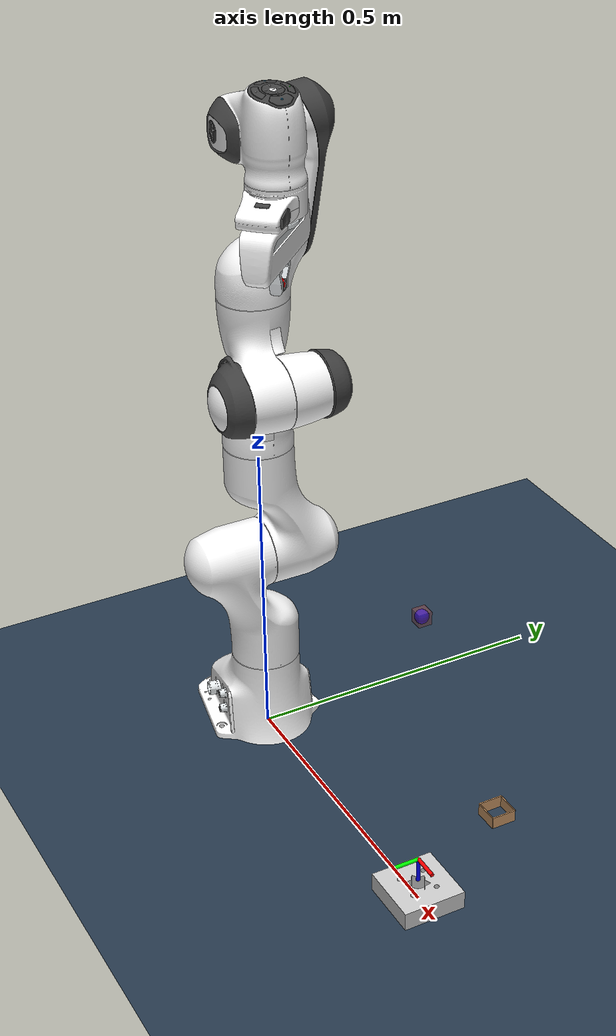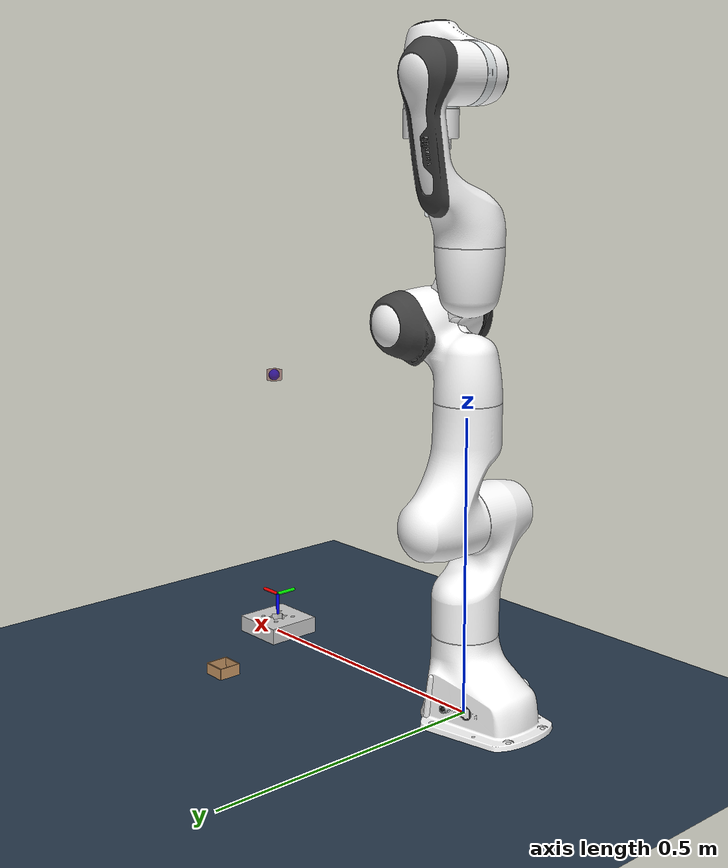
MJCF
<mujoco model="panda scene">

  <include file="panda.xml"/>
  <include file="peg_in_hole.xml"/>

  <statistic center="0.3 0 0.35" extent="0.8" meansize="0.05"/>

  <visual>
    <headlight diffuse="0.6 0.6 0.6" ambient="0.1 0.1 0.1" specular="0 0 0"/>
    <global azimuth="120" elevation="-20"/>
  </visual>

  <asset>
    <texture name="grid" type="2d" builtin="checker" rgb1=".2 .3 .4" rgb2=".1 0.15 0.2" width="512" height="512"
      mark="cross" markrgb=".8 .8 .8"/>
    <material name="grid" texture="grid" texrepeat="1 1" texuniform="true"/>
  </asset>

  <worldbody>
    <light pos="0 0 1.5" dir="0 0 -1" directional="true"/>
    <geom name="floor" size="1 1 0.01" type="plane" material="grid"/>
    <body name="target" pos="0.5 0 .5" quat="0 1 0 0" mocap="true">
      <geom type="box" size=".01 .01 .01" contype="0" conaffinity="0" rgba=".6 .3 .3 .5"/>
      <site type="sphere" size="0.01" rgba="0 0 1 1" group="1"/>
    </body>

  </worldbody>

  <keyframe>
    <key name="home" qpos="0 0 0 -1.57079 0 1.57079 0.7853 0.04 0.04 0.4 0.2 0.01 1 0 0 0" ctrl="0 0 0 -1.57079 0 1.57079 -0.7853 255"/>
  </keyframe>

</mujoco>

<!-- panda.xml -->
<mujoco model="panda">
  <compiler angle="radian" meshdir="assets" autolimits="true"/>

  <option integrator="implicitfast"/>

  <default>
    <default class="panda">
      <material specular="0.5" shininess="0.25"/>
      <joint armature="0.1" damping="1" axis="0 0 1" range="-2.8973 2.8973"/>
      <general dyntype="none" biastype="affine" ctrlrange="-2.8973 2.8973" forcerange="-87 87"/>
      <default class="finger">
        <joint axis="0 1 0" type="slide" range="0 0.04"/>
      </default>

      <default class="visual">
        <geom type="mesh" contype="0" conaffinity="0" group="2"/>
      </default>
      <default class="collision">
        <geom type="mesh" group="3"/>
        <default class="fingertip_pad_collision_1">
          <geom type="box" size="0.0085 0.004 0.0085" pos="0 0.0055 0.0445"/>
        </default>
        <default class="fingertip_pad_collision_2">
          <geom type="box" size="0.003 0.002 0.003" pos="0.0055 0.002 0.05"/>
        </default>
        <default class="fingertip_pad_collision_3">
          <geom type="box" size="0.003 0.002 0.003" pos="-0.0055 0.002 0.05"/>
        </default>
        <default class="fingertip_pad_collision_4">
          <geom type="box" size="0.003 0.002 0.0035" pos="0.0055 0.002 0.0395"/>
        </default>
        <default class="fingertip_pad_collision_5">
          <geom type="box" size="0.003 0.002 0.0035" pos="-0.0055 0.002 0.0395"/>
        </default>
      </default>
    </default>
  </default>

  <asset>
    <material class="panda" name="white" rgba="1 1 1 1"/>
    <material class="panda" name="off_white" rgba="0.901961 0.921569 0.929412 1"/>
    <material class="panda" name="black" rgba="0.25 0.25 0.25 1"/>
    <material class="panda" name="green" rgba="0 1 0 1"/>
    <material class="panda" name="light_blue" rgba="0.039216 0.541176 0.780392 1"/>

    <!-- Collision meshes -->
    <mesh name="link0_c" file="link0.stl"/>
    <mesh name="link1_c" file="link1.stl"/>
    <mesh name="link2_c" file="link2.stl"/>
    <mesh name="link3_c" file="link3.stl"/>
    <mesh name="link4_c" file="link4.stl"/>
    <mesh name="link5_c0" file="link5_collision_0.obj"/>
    <mesh name="link5_c1" file="link5_collision_1.obj"/>
    <mesh name="link5_c2" file="link5_collision_2.obj"/>
    <mesh name="link6_c" file="link6.stl"/>
    <mesh name="link7_c" file="link7.stl"/>
    <mesh name="hand_c" file="hand.stl"/>

    <!-- Visual meshes -->
    <mesh file="link0_0.obj"/>
    <mesh file="link0_1.obj"/>
    <mesh file="link0_2.obj"/>
    <mesh file="link0_3.obj"/>
    <mesh file="link0_4.obj"/>
    <mesh file="link0_5.obj"/>
    <mesh file="link0_7.obj"/>
    <mesh file="link0_8.obj"/>
    <mesh file="link0_9.obj"/>
    <mesh file="link0_10.obj"/>
    <mesh file="link0_11.obj"/>
    <mesh file="link1.obj"/>
    <mesh file="link2.obj"/>
    <mesh file="link3_0.obj"/>
    <mesh file="link3_1.obj"/>
    <mesh file="link3_2.obj"/>
    <mesh file="link3_3.obj"/>
    <mesh file="link4_0.obj"/>
    <mesh file="link4_1.obj"/>
    <mesh file="link4_2.obj"/>
    <mesh file="link4_3.obj"/>
    <mesh file="link5_0.obj"/>
    <mesh file="link5_1.obj"/>
    <mesh file="link5_2.obj"/>
    <mesh file="link6_0.obj"/>
    <mesh file="link6_1.obj"/>
    <mesh file="link6_2.obj"/>
    <mesh file="link6_3.obj"/>
    <mesh file="link6_4.obj"/>
    <mesh file="link6_5.obj"/>
    <mesh file="link6_6.obj"/>
    <mesh file="link6_7.obj"/>
    <mesh file="link6_8.obj"/>
    <mesh file="link6_9.obj"/>
    <mesh file="link6_10.obj"/>
    <mesh file="link6_11.obj"/>
    <mesh file="link6_12.obj"/>
    <mesh file="link6_13.obj"/>
    <mesh file="link6_14.obj"/>
    <mesh file="link6_15.obj"/>
    <mesh file="link6_16.obj"/>
    <mesh file="link7_0.obj"/>
    <mesh file="link7_1.obj"/>
    <mesh file="link7_2.obj"/>
    <mesh file="link7_3.obj"/>
    <mesh file="link7_4.obj"/>
    <mesh file="link7_5.obj"/>
    <mesh file="link7_6.obj"/>
    <mesh file="link7_7.obj"/>
    <mesh file="hand_0.obj"/>
    <mesh file="hand_1.obj"/>
    <mesh file="hand_2.obj"/>
    <mesh file="hand_3.obj"/>
    <mesh file="hand_4.obj"/>
    <mesh file="finger_0.obj"/>
    <mesh file="finger_1.obj"/>
  </asset>

  <worldbody>
    <light name="top" pos="0 0 2" mode="trackcom"/>
    <body name="link0" childclass="panda" gravcomp="1">
      <inertial mass="0.629769" pos="-0.041018 -0.00014 0.049974"
        fullinertia="0.00315 0.00388 0.004285 8.2904e-7 0.00015 8.2299e-6"/>
      <geom mesh="link0_0" material="off_white" class="visual"/>
      <geom mesh="link0_1" material="black" class="visual"/>
      <geom mesh="link0_2" material="off_white" class="visual"/>
      <geom mesh="link0_3" material="black" class="visual"/>
      <geom mesh="link0_4" material="off_white" class="visual"/>
      <geom mesh="link0_5" material="black" class="visual"/>
      <geom mesh="link0_7" material="white" class="visual"/>
      <geom mesh="link0_8" material="white" class="visual"/>
      <geom mesh="link0_9" material="black" class="visual"/>
      <geom mesh="link0_10" material="off_white" class="visual"/>
      <geom mesh="link0_11" material="white" class="visual"/>
      <geom mesh="link0_c" class="collision"/>
      <body name="link1" pos="0 0 0.333" gravcomp="1">
        <inertial mass="4.970684" pos="0.003875 0.002081 -0.04762"
          fullinertia="0.70337 0.70661 0.0091170 -0.00013900 0.0067720 0.019169"/>
        <joint name="joint1"/>
        <geom material="white" mesh="link1" class="visual"/>
        <geom mesh="link1_c" class="collision"/>
        <body name="link2" quat="1 -1 0 0" gravcomp="1">
          <inertial mass="0.646926" pos="-0.003141 -0.02872 0.003495"
            fullinertia="0.0079620 2.8110e-2 2.5995e-2 -3.925e-3 1.0254e-2 7.04e-4"/>
          <joint name="joint2" range="-1.7628 1.7628"/>
          <geom material="white" mesh="link2" class="visual"/>
          <geom mesh="link2_c" class="collision"/>
          <body name="link3" pos="0 -0.316 0" quat="1 1 0 0" gravcomp="1">
            <joint name="joint3"/>
            <inertial mass="3.228604" pos="2.7518e-2 3.9252e-2 -6.6502e-2"
              fullinertia="3.7242e-2 3.6155e-2 1.083e-2 -4.761e-3 -1.1396e-2 -1.2805e-2"/>
            <geom mesh="link3_0" material="white" class="visual"/>
            <geom mesh="link3_1" material="white" class="visual"/>
            <geom mesh="link3_2" material="white" class="visual"/>
            <geom mesh="link3_3" material="black" class="visual"/>
            <geom mesh="link3_c" class="collision"/>
            <body name="link4" pos="0.0825 0 0" quat="1 1 0 0" gravcomp="1">
              <inertial mass="3.587895" pos="-5.317e-2 1.04419e-1 2.7454e-2"
                fullinertia="2.5853e-2 1.9552e-2 2.8323e-2 7.796e-3 -1.332e-3 8.641e-3"/>
              <joint name="joint4" range="-3.0718 -0.0698"/>
              <geom mesh="link4_0" material="white" class="visual"/>
              <geom mesh="link4_1" material="white" class="visual"/>
              <geom mesh="link4_2" material="black" class="visual"/>
              <geom mesh="link4_3" material="white" class="visual"/>
              <geom mesh="link4_c" class="collision"/>
              <body name="link5" pos="-0.0825 0.384 0" quat="1 -1 0 0" gravcomp="1">
                <inertial mass="1.225946" pos="-1.1953e-2 4.1065e-2 -3.8437e-2"
                  fullinertia="3.5549e-2 2.9474e-2 8.627e-3 -2.117e-3 -4.037e-3 2.29e-4"/>
                <joint name="joint5"/>
                <geom mesh="link5_0" material="black" class="visual"/>
                <geom mesh="link5_1" material="white" class="visual"/>
                <geom mesh="link5_2" material="white" class="visual"/>
                <geom mesh="link5_c0" class="collision"/>
                <geom mesh="link5_c1" class="collision"/>
                <geom mesh="link5_c2" class="collision"/>
                <body name="link6" quat="1 1 0 0" gravcomp="1">
                  <inertial mass="1.666555" pos="6.0149e-2 -1.4117e-2 -1.0517e-2"
                    fullinertia="1.964e-3 4.354e-3 5.433e-3 1.09e-4 -1.158e-3 3.41e-4"/>
                  <joint name="joint6" range="-0.0175 3.7525"/>
                  <geom mesh="link6_0" material="off_white" class="visual"/>
                  <geom mesh="link6_1" material="white" class="visual"/>
                  <geom mesh="link6_2" material="black" class="visual"/>
                  <geom mesh="link6_3" material="white" class="visual"/>
                  <geom mesh="link6_4" material="white" class="visual"/>
                  <geom mesh="link6_5" material="white" class="visual"/>
                  <geom mesh="link6_6" material="white" class="visual"/>
                  <geom mesh="link6_7" material="light_blue" class="visual"/>
                  <geom mesh="link6_8" material="light_blue" class="visual"/>
                  <geom mesh="link6_9" material="black" class="visual"/>
                  <geom mesh="link6_10" material="black" class="visual"/>
                  <geom mesh="link6_11" material="white" class="visual"/>
                  <geom mesh="link6_12" material="green" class="visual"/>
                  <geom mesh="link6_13" material="white" class="visual"/>
                  <geom mesh="link6_14" material="black" class="visual"/>
                  <geom mesh="link6_15" material="black" class="visual"/>
                  <geom mesh="link6_16" material="white" class="visual"/>
                  <geom mesh="link6_c" class="collision"/>
                  <body name="link7" pos="0.088 0 0" quat="1 1 0 0" gravcomp="1">
                    <inertial mass="7.35522e-01" pos="1.0517e-2 -4.252e-3 6.1597e-2"
                      fullinertia="1.2516e-2 1.0027e-2 4.815e-3 -4.28e-4 -1.196e-3 -7.41e-4"/>
                    <joint name="joint7"/>
                    <geom mesh="link7_0" material="white" class="visual"/>
                    <geom mesh="link7_1" material="black" class="visual"/>
                    <geom mesh="link7_2" material="black" class="visual"/>
                    <geom mesh="link7_3" material="black" class="visual"/>
                    <geom mesh="link7_4" material="black" class="visual"/>
                    <geom mesh="link7_5" material="black" class="visual"/>
                    <geom mesh="link7_6" material="black" class="visual"/>
                    <geom mesh="link7_7" material="white" class="visual"/>
                    <geom mesh="link7_c" class="collision"/>
                    <body name="hand" pos="0 0 0.107" quat="0.9238795 0 0 -0.3826834" gravcomp="1">
                      <site name="attachment_site" rgba="1 0 0 1" size="0.01" group="1" pos = "0 0 0.1" quat="1 0 0 0"/>

                      <inertial mass="0.73" pos="-0.01 0 0.03" diaginertia="0.001 0.0025 0.0017"/>
                      <geom mesh="hand_0" material="off_white" class="visual"/>
                      <geom mesh="hand_1" material="black" class="visual"/>
                      <geom mesh="hand_2" material="black" class="visual"/>
                      <geom mesh="hand_3" material="white" class="visual"/>
                      <geom mesh="hand_4" material="off_white" class="visual"/>
                      <geom mesh="hand_c" class="collision"/>
                      <body name="left_finger" pos="0 0 0.0584" gravcomp="1">
                        <inertial mass="0.015" pos="0 0 0" diaginertia="2.375e-6 2.375e-6 7.5e-7"/>
                        <joint name="finger_joint1" class="finger"/>
                        <geom mesh="finger_0" material="off_white" class="visual"/>
                        <geom mesh="finger_1" material="black" class="visual"/>
                        <geom mesh="finger_0" class="collision"/>
                        <geom class="fingertip_pad_collision_1"/>
                        <geom class="fingertip_pad_collision_2"/>
                        <geom class="fingertip_pad_collision_3"/>
                        <geom class="fingertip_pad_collision_4"/>
                        <geom class="fingertip_pad_collision_5"/>
                      </body>
                      <body name="right_finger" pos="0 0 0.0584" quat="0 0 0 1" gravcomp="1">
                        <inertial mass="0.015" pos="0 0 0" diaginertia="2.375e-6 2.375e-6 7.5e-7"/>
                        <joint name="finger_joint2" class="finger"/>
                        <geom mesh="finger_0" material="off_white" class="visual"/>
                        <geom mesh="finger_1" material="black" class="visual"/>
                        <geom mesh="finger_0" class="collision"/>
                        <geom class="fingertip_pad_collision_1"/>
                        <geom class="fingertip_pad_collision_2"/>
                        <geom class="fingertip_pad_collision_3"/>
                        <geom class="fingertip_pad_collision_4"/>
                        <geom class="fingertip_pad_collision_5"/>
                      </body>
                    </body>
                  </body>
                </body>
              </body>
            </body>
          </body>
        </body>
      </body>
    </body>
  </worldbody>

  <tendon>
    <fixed name="split">
      <joint joint="finger_joint1" coef="0.5"/>
      <joint joint="finger_joint2" coef="0.5"/>
    </fixed>
  </tendon>

  <equality>
    <joint joint1="finger_joint1" joint2="finger_joint2" solimp="0.95 0.99 0.001" solref="0.005 1"/>
  </equality>

  <actuator>

    <motor name="joint1" joint="joint1" ctrlrange="-87 87"/>
    <motor name="joint2" joint="joint2" ctrlrange="-87 87"/>
    <motor name="joint3" joint="joint3" ctrlrange="-87 87"/>
    <motor name="joint4" joint="joint4" ctrlrange="-87 87"/>
    <motor name="joint5" joint="joint5" ctrlrange="-12 12"/>
    <motor name="joint6" joint="joint6" ctrlrange="-12 12"/>
    <motor name="joint7" joint="joint7" ctrlrange="-12 12"/>
    <general class="panda" name="actuator8" tendon="split" forcerange="-100 100" ctrlrange="0 255"
      gainprm="0.1568627451 0 0" biasprm="0 -100 -10"/>
    </actuator>
</mujoco>

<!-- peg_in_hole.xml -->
<mujoco model="arena">
  <visual>
    <quality shadowsize="8192" />
  </visual>
  <asset>
    <material name="None" specular="0.8000000000000002" shininess="0.5" rgba="0.8 0.8 0.8 1"/>
    <material name="Peg" specular="0.8000000000000002" shininess="0.5" rgba="0.8 0.4 0.4 1"/>
    <mesh file="peg_visual.obj"/>
    <mesh file="peg_collision_0.obj"/>
    <mesh file="peg_collision_1.obj"/>
    <mesh file="peg_collision_2.obj"/>
    <mesh file="peg_collision_3.obj"/>
    <mesh file="peg_collision_4.obj"/>
    <mesh file="peg_collision_5.obj"/>
    <mesh file="peg_collision_6.obj"/>
    <mesh file="peg_collision_7.obj"/>
    <mesh file="peg_collision_8.obj"/>
    <mesh file="hole_visual.obj"/>
    <mesh file="hole_collision_0.obj"/>
    <mesh file="hole_collision_1.obj"/>
    <mesh file="hole_collision_2.obj"/>
    <mesh file="hole_collision_3.obj"/>
    <mesh file="hole_collision_4.obj"/>
    <mesh file="hole_collision_5.obj"/>
    <mesh file="hole_collision_6.obj"/>
    <mesh file="hole_collision_7.obj"/>
    <mesh file="hole_collision_8.obj"/>
    <mesh file="hole_collision_9.obj"/>
    <mesh file="hole_collision_10.obj"/>
    <texture type='skybox' builtin='gradient' rgb1='.4 .6 .8' rgb2='0 0 0' width='100' height='100'/>
    <texture name='groundplane' type='2d' builtin='checker' rgb1='.2 .3 .4' rgb2='.1 .2 .3' width='300' height='300' mark='edge' markrgb='.8 .8 .8'/>
    <material name='groundplane' texture='groundplane' texrepeat='5 5' texuniform='true' reflectance='.2'/>
  </asset>

  <!-- Always initialize the free camera to point at the origin. -->
  <statistic center='0 0 0'/>
  <worldbody>

    <body name="hole" pos="0.5 0 0.015" euler="0 0 0">
      <geom material="None" mesh="hole_visual" class="visual"/>
      <geom mesh="hole_collision_0" class="collision" density="10"/>
      <geom mesh="hole_collision_1" class="collision" density="10"/>
      <geom mesh="hole_collision_2" class="collision" density="10"/>
      <geom mesh="hole_collision_3" class="collision" density="10"/>
      <geom mesh="hole_collision_4" class="collision" density="10"/>
      <geom mesh="hole_collision_5" class="collision" density="10"/>
      <geom mesh="hole_collision_6" class="collision" density="10"/>
      <geom mesh="hole_collision_7" class="collision" density="10"/>
      <geom mesh="hole_collision_8" class="collision" density="10"/>
      <geom mesh="hole_collision_9" class="collision" density="10"/>
      <geom mesh="hole_collision_10" class="collision" density="10"/>

      <body name="hole_target" pos="0 0 0.06" euler="3.1416 0 0">
        <!-- geoms for x,y,z axis as cylinder, with RGB color -->
        <geom type="cylinder" size="0.003 0.02" pos="0.02 0 0" rgba="1 0 0 1" euler="0 1.5708 0" class="visual"/>
        <geom type="cylinder" size="0.003 0.02" pos="0 0.02 0" rgba="0 1 0 1"  euler="1.5708 0 0" class="visual"/>
        <geom type="cylinder" size="0.003 0.02" pos="0 0 0.02" rgba="0 0 1 1" euler="0 0 0" class="visual"/>
      </body>

    </body>

    <body name="peg" euler="0 0 0" pos="0 0 0.1">
      <freejoint />
      <geom material="Peg" mesh="peg_visual" class="visual"/>
      <geom mesh="peg_collision_0" class="collision" density="100"/>
      <geom mesh="peg_collision_1" class="collision" density="100"/>
      <geom mesh="peg_collision_2" class="collision" density="100"/>
      <geom mesh="peg_collision_3" class="collision" density="100"/>
      <geom mesh="peg_collision_4" class="collision" density="100"/>
      <geom mesh="peg_collision_5" class="collision" density="100"/>
      <geom mesh="peg_collision_6" class="collision" density="100"/>
      <geom mesh="peg_collision_7" class="collision" density="100"/>
      <geom mesh="peg_collision_8" class="collision" density="100"/>

      <body name="grasp" pos="0 0 0.1" euler="3.1416 0 0">
        <!-- geoms for x,y,z axis as cylinder, with RGB color -->
        <geom type="cylinder" size="0.003 0.02" pos="0.02 0 0" rgba="1 0 0 1" euler="0 1.5708 0" class="visual"/>
        <geom type="cylinder" size="0.003 0.02" pos="0 0.02 0" rgba="0 1 0 1"  euler="1.5708 0 0" class="visual"/>
        <geom type="cylinder" size="0.003 0.02" pos="0 0 0.02" rgba="0 0 1 1" euler="0 0 0" class="visual"/>
      </body>

    </body>

    <body name="holder" pos="0.4 0.2 0">
      <geom type="box" size="0.02 0.001 0.01" pos="-0.0 -0.02 0.01" rgba="0.8 0.6 0.4 1" density="100" class="visual"/>
      <geom type="box" size="0.02 0.001 0.01" pos="-0.0 0.02 0.01" rgba="0.8 0.6 0.4 1" density="100" class="visual"/>
      <geom type="box" size="0.001 0.02 0.01" pos="-0.02 0.0 0.01" rgba="0.8 0.6 0.4 1" density="100" class="visual"/>
      <geom type="box" size="0.001 0.02 0.01" pos="0.02 0.0 0.01" rgba="0.8 0.6 0.4 1" density="100" class="visual"/>

      <geom type="box" size="0.02 0.001 0.01" pos="-0.0 -0.02 0.01" rgba="0.8 0.6 0.4 1" density="100" class="collision"/>
      <geom type="box" size="0.02 0.001 0.01" pos="-0.0 0.02 0.01" rgba="0.8 0.6 0.4 1" density="100" class="collision"/>
      <geom type="box" size="0.001 0.02 0.01" pos="-0.02 0.0 0.01" rgba="0.8 0.6 0.4 1" density="100" class="collision"/>
      <geom type="box" size="0.001 0.02 0.01" pos="0.02 0.0 0.01" rgba="0.8 0.6 0.4 1" density="100" class="collision"/>
    </body>

    <!-- View of the person sitting behind computer operating the robot. -->
    <camera name='fixed_viewer' pos='0 -1.5 0.5' quat='0.7 0.7 0 0'/>
  </worldbody>
</mujoco>
